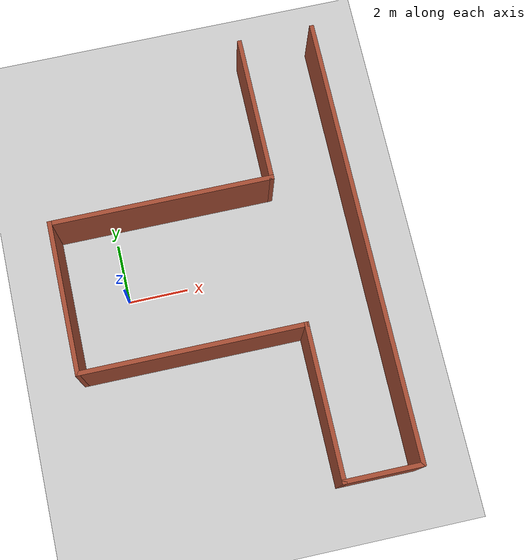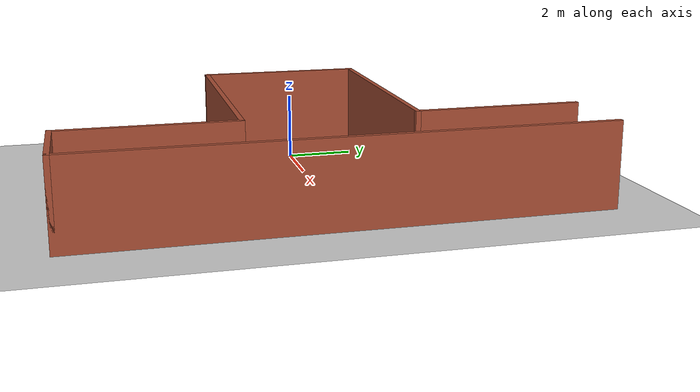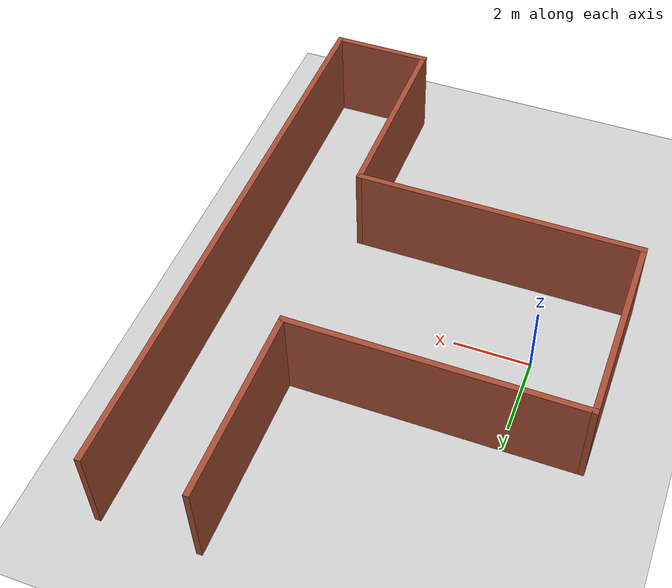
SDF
<sdf version="1.6">
 <world name="default">
  <light name="sun" type="directional">
   <pose>0 0 10 0 -0 0</pose>
   <diffuse>0.8 0.8 0.8 1</diffuse>
   <specular>0.2 0.2 0.2 1</specular>
   <attenuation>
    <range>1000</range>
    <constant>0.9</constant>
    <linear>0.01</linear>
    <quadratic>0.001</quadratic>
   </attenuation>
   <direction>-0.5 0.1 -0.9</direction>
  </light>
  <model name="ground_plane">
   <static>1</static>
   <link name="link">
    <collision name="collision">
     <geometry><plane><normal>0 0 1</normal><size>100 100</size></plane></geometry>
     <surface>
      <contact><collide_bitmask>65535</collide_bitmask></contact>
      <friction><ode><mu>100</mu><mu2>50</mu2></ode></friction>
     </surface>
    </collision>
    <visual name="visual">
     <cast_shadows>0</cast_shadows>
     <geometry><plane><normal>0 0 1</normal><size>100 100</size></plane></geometry>
     <material>
      <script><uri>file://media/materials/scripts/gazebo.material</uri><name>Gazebo/Grey</name></script>
     </material>
    </visual>
   </link>
  </model>
  <gravity>0 0 -9.8</gravity>
  <magnetic_field>6e-06 2.3e-05 -4.2e-05</magnetic_field>
  <atmosphere type="adiabatic"/>
  <physics name="default_physics" default="0" type="ode">
   <max_step_size>0.001</max_step_size>
   <real_time_factor>1</real_time_factor>
   <real_time_update_rate>1000</real_time_update_rate>
  </physics>
  <scene><ambient>0.4 0.4 0.4 1</ambient><background>0.7 0.7 0.7 1</background><shadows>1</shadows></scene>
  <spherical_coordinates>
   <surface_model>EARTH_WGS84</surface_model>
   <latitude_deg>0</latitude_deg>
   <longitude_deg>0</longitude_deg>
   <elevation>0</elevation>
   <heading_deg>0</heading_deg>
  </spherical_coordinates>
  <model name="T-Shape">
   <pose>3 0 0 0 0 -1.5708</pose>
   <link name="Wall_0">
    <collision name="Wall_0_Collision">
     <geometry><box><size>15 0.15 2.5</size></box></geometry>
     <pose>0 0 1.25 0 -0 0</pose>
    </collision>
    <visual name="Wall_0_Visual">
     <pose>0 0 1.25 0 -0 0</pose>
     <geometry><box><size>15 0.15 2.5</size></box></geometry>
     <material>
      <script><uri>file://media/materials/scripts/gazebo.material</uri><name>Gazebo/Bricks</name></script>
      <ambient>1 1 1 1</ambient>
     </material>
     <meta><layer>0</layer></meta>
    </visual>
    <pose>-0 4.92501 0 0 -0 0</pose>
   </link>
   <link name="Wall_1">
    <collision name="Wall_1_Collision">
     <geometry><box><size>2.65 0.15 2.5</size></box></geometry>
     <pose>0 0 1.25 0 -0 0</pose>
    </collision>
    <visual name="Wall_1_Visual">
     <pose>0 0 1.25 0 -0 0</pose>
     <geometry><box><size>2.65 0.15 2.5</size></box></geometry>
     <material>
      <script><uri>file://media/materials/scripts/gazebo.material</uri><name>Gazebo/Bricks</name></script>
      <ambient>1 1 1 1</ambient>
     </material>
     <meta><layer>0</layer></meta>
    </visual>
    <pose>7.425 3.67501 0 0 -0 -1.5708</pose>
   </link>
   <link name="Wall_3">
    <collision name="Wall_3_Collision">
     <geometry><box><size>5.15 0.15 2.5</size></box></geometry>
     <pose>0 0 1.25 0 -0 0</pose>
    </collision>
    <visual name="Wall_3_Visual">
     <pose>0 0 1.25 0 -0 0</pose>
     <geometry><box><size>5.15 0.15 2.5</size></box></geometry>
     <material>
      <script><uri>file://media/materials/scripts/gazebo.material</uri><name>Gazebo/Bricks</name></script>
      <ambient>1 1 1 1</ambient>
     </material>
     <meta><layer>0</layer></meta>
    </visual>
    <pose>4.925 2.42501 0 0 -0 3.14159</pose>
   </link>
   <link name="Wall_5">
    <collision name="Wall_5_Collision">
     <geometry><box><size>7.5 0.15 2.5</size></box></geometry>
     <pose>0 0 1.25 0 -0 0</pose>
    </collision>
    <visual name="Wall_5_Visual">
     <pose>0 0 1.25 0 -0 0</pose>
     <geometry><box><size>7.5 0.15 2.5</size></box></geometry>
     <material>
      <script><uri>file://media/materials/scripts/gazebo.material</uri><name>Gazebo/Bricks</name></script>
      <ambient>1 1 1 1</ambient>
     </material>
     <meta><layer>0</layer></meta>
    </visual>
    <pose>2.425 -1.24999 0 0 -0 -1.5708</pose>
   </link>
   <link name="Wall_6">
    <collision name="Wall_6_Collision">
     <geometry><box><size>5.12687 0.15 2.5</size></box></geometry>
     <pose>0 0 1.25 0 -0 0</pose>
    </collision>
    <visual name="Wall_6_Visual">
     <pose>0 0 1.25 0 -0 0</pose>
     <geometry><box><size>5.12687 0.15 2.5</size></box></geometry>
     <material>
      <script><uri>file://media/materials/scripts/gazebo.material</uri><name>Gazebo/Bricks</name></script>
      <ambient>1 1 1 1</ambient>
     </material>
     <meta><layer>0</layer></meta>
    </visual>
    <pose>-0.063435 -4.92499 0 0 -0 3.14159</pose>
   </link>
   <link name="Wall_7">
    <collision name="Wall_7_Collision">
     <geometry><box><size>7.50004 0.15 2.5</size></box></geometry>
     <pose>0 0 1.25 0 -0 0</pose>
    </collision>
    <visual name="Wall_7_Visual">
     <pose>0 0 1.25 0 -0 0</pose>
     <geometry><box><size>7.50004 0.15 2.5</size></box></geometry>
     <material>
      <script><uri>file://media/materials/scripts/gazebo.material</uri><name>Gazebo/Bricks</name></script>
      <ambient>1 1 1 1</ambient>
     </material>
     <meta><layer>0</layer></meta>
    </visual>
    <pose>-2.55187 -1.24999 0 0 -0 1.5708</pose>
   </link>
   <link name="Wall_8">
    <collision name="Wall_8_Collision">
     <geometry><box><size>5 0.15 2.5</size></box></geometry>
     <pose>0 0 1.25 0 -0 0</pose>
    </collision>
    <visual name="Wall_8_Visual">
     <pose>0 0 1.25 0 -0 0</pose>
     <geometry><box><size>5 0.15 2.5</size></box></geometry>
     <material>
      <script><uri>file://media/materials/scripts/gazebo.material</uri><name>Gazebo/Bricks</name></script>
      <ambient>1 1 1 1</ambient>
     </material>
     <meta><layer>0</layer></meta>
    </visual>
    <pose>-4.97687 2.42501 0 0 -0 3.14159</pose>
   </link>
   <static>1</static>
  </model>
 </world>
</sdf>
